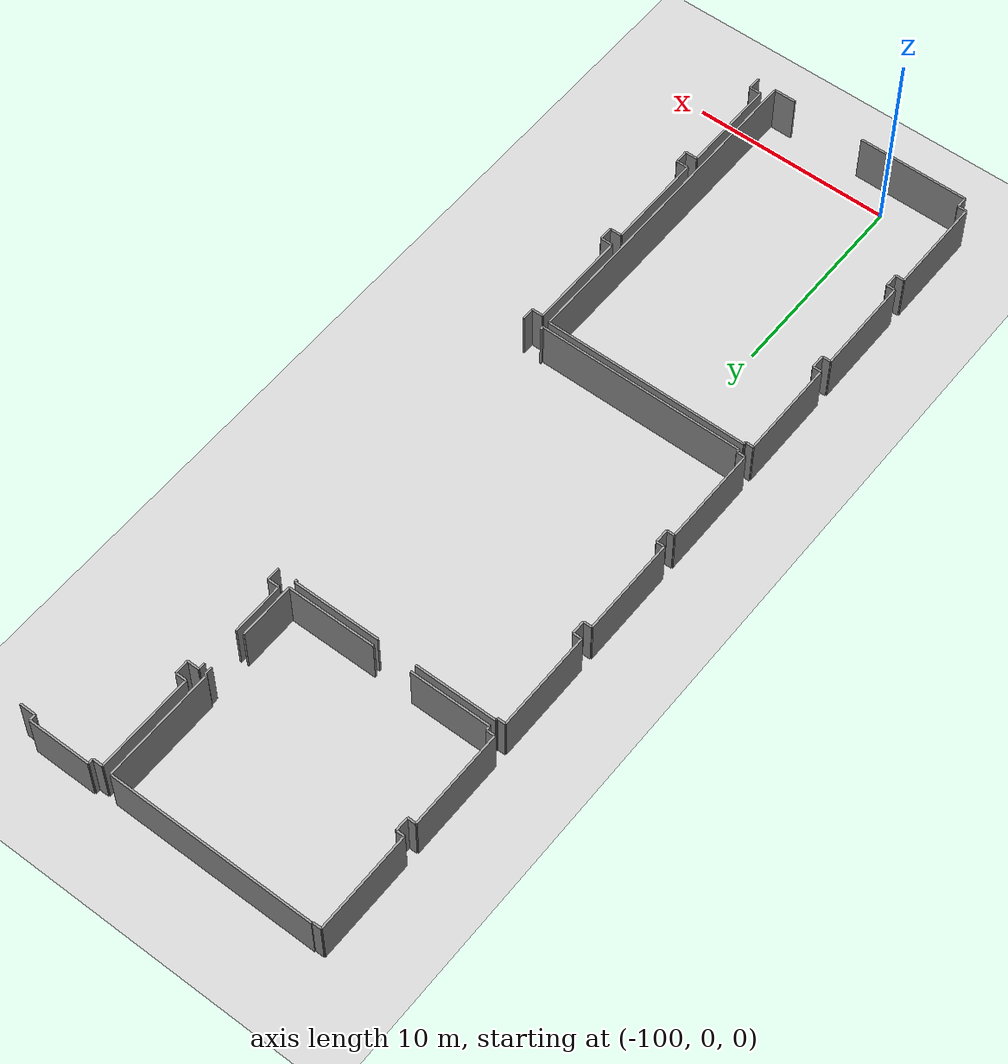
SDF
<sdf version="1.6">
 <world name="default">
  <model name="ground_plane">
   <static>1</static>
   <link name="link">
    <collision name="collision">
     <geometry><plane><normal>0 0 1</normal><size>100 100</size></plane></geometry>
     <surface><friction><ode><mu>100</mu><mu2>50</mu2></ode></friction></surface>
    </collision>
    <visual name="visual">
     <cast_shadows>0</cast_shadows>
     <geometry><plane><normal>0 0 1</normal><size>100 100</size></plane></geometry>
     <material>
      <script><uri>file://media/materials/scripts/gazebo.material</uri><name>Gazebo/Grey</name></script>
     </material>
    </visual>
   </link>
  </model>
  <model name="50015847">
   <static>1</static>
   <link name="Wall_123">
    <collision name="Wall_123_Collision">
     <geometry><box><size>4.93034016373 0.1 2.5</size></box></geometry>
     <pose>2.46517008186 0 1.25 0 0 0</pose>
    </collision>
    <visual name="Wall_123_Visual">
     <pose>2.46517008186 0 1.25 0 0 0</pose>
     <geometry><box><size>4.93034016373 0.1 2.5</size></box></geometry>
     <material>
      <script><uri>file://media/materials/scripts/gazebo.material</uri><name>Gazebo/Grey</name></script>
      <ambient>1 1 1 1</ambient>
     </material>
    </visual>
    <pose>28.5999389841 -44.6794122134 0 0 0 1.57079632679</pose>
   </link>
   <link name="Wall_124">
    <collision name="Wall_124_Collision">
     <geometry><box><size>0.425840239996 0.1 2.5</size></box></geometry>
     <pose>0.212920119998 0 1.25 0 0 0</pose>
    </collision>
    <visual name="Wall_124_Visual">
     <pose>0.212920119998 0 1.25 0 0 0</pose>
     <geometry><box><size>0.425840239996 0.1 2.5</size></box></geometry>
     <material>
      <script><uri>file://media/materials/scripts/gazebo.material</uri><name>Gazebo/Grey</name></script>
      <ambient>1 1 1 1</ambient>
     </material>
    </visual>
    <pose>28.5999389841 -39.7490720496 0 0 0 0.0</pose>
   </link>
   <link name="Wall_125">
    <collision name="Wall_125_Collision">
     <geometry><box><size>0.681598616973 0.1 2.5</size></box></geometry>
     <pose>0.340799308486 0 1.25 0 0 0</pose>
    </collision>
    <visual name="Wall_125_Visual">
     <pose>0.340799308486 0 1.25 0 0 0</pose>
     <geometry><box><size>0.681598616973 0.1 2.5</size></box></geometry>
     <material>
      <script><uri>file://media/materials/scripts/gazebo.material</uri><name>Gazebo/Grey</name></script>
      <ambient>1 1 1 1</ambient>
     </material>
    </visual>
    <pose>29.0257792241 -39.7490720496 0 0 0 1.57079632679</pose>
   </link>
   <link name="Wall_126">
    <collision name="Wall_126_Collision">
     <geometry><box><size>0.407281232521 0.1 2.5</size></box></geometry>
     <pose>0.203640616261 0 1.25 0 0 0</pose>
    </collision>
    <visual name="Wall_126_Visual">
     <pose>0.203640616261 0 1.25 0 0 0</pose>
     <geometry><box><size>0.407281232521 0.1 2.5</size></box></geometry>
     <material>
      <script><uri>file://media/materials/scripts/gazebo.material</uri><name>Gazebo/Grey</name></script>
      <ambient>1 1 1 1</ambient>
     </material>
    </visual>
    <pose>29.0257792241 -39.0674734327 0 0 0 3.14159265359</pose>
   </link>
   <link name="Wall_127">
    <collision name="Wall_127_Collision">
     <geometry><box><size>4.89500177963 0.1 2.5</size></box></geometry>
     <pose>2.44750088982 0 1.25 0 0 0</pose>
    </collision>
    <visual name="Wall_127_Visual">
     <pose>2.44750088982 0 1.25 0 0 0</pose>
     <geometry><box><size>4.89500177963 0.1 2.5</size></box></geometry>
     <material>
      <script><uri>file://media/materials/scripts/gazebo.material</uri><name>Gazebo/Grey</name></script>
      <ambient>1 1 1 1</ambient>
     </material>
    </visual>
    <pose>28.6184979916 -39.0674734327 0 0 0 1.57079632679</pose>
   </link>
   <link name="Wall_128">
    <collision name="Wall_128_Collision">
     <geometry><box><size>0.423806376163 0.1 2.5</size></box></geometry>
     <pose>0.211903188082 0 1.25 0 0 0</pose>
    </collision>
    <visual name="Wall_128_Visual">
     <pose>0.211903188082 0 1.25 0 0 0</pose>
     <geometry><box><size>0.423806376163 0.1 2.5</size></box></geometry>
     <material>
      <script><uri>file://media/materials/scripts/gazebo.material</uri><name>Gazebo/Grey</name></script>
      <ambient>1 1 1 1</ambient>
     </material>
    </visual>
    <pose>28.6184979916 -34.172471653 0 0 0 0.0</pose>
   </link>
   <link name="Wall_129">
    <collision name="Wall_129_Collision">
     <geometry><box><size>0.689734072304 0.1 2.5</size></box></geometry>
     <pose>0.344867036152 0 1.25 0 0 0</pose>
    </collision>
    <visual name="Wall_129_Visual">
     <pose>0.344867036152 0 1.25 0 0 0</pose>
     <geometry><box><size>0.689734072304 0.1 2.5</size></box></geometry>
     <material>
      <script><uri>file://media/materials/scripts/gazebo.material</uri><name>Gazebo/Grey</name></script>
      <ambient>1 1 1 1</ambient>
     </material>
    </visual>
    <pose>29.0423043677 -34.172471653 0 0 0 1.57079632679</pose>
   </link>
   <link name="Wall_130">
    <collision name="Wall_130_Collision">
     <geometry><box><size>0.407026999542 0.1 2.5</size></box></geometry>
     <pose>0.203513499771 0 1.25 0 0 0</pose>
    </collision>
    <visual name="Wall_130_Visual">
     <pose>0.203513499771 0 1.25 0 0 0</pose>
     <geometry><box><size>0.407026999542 0.1 2.5</size></box></geometry>
     <material>
      <script><uri>file://media/materials/scripts/gazebo.material</uri><name>Gazebo/Grey</name></script>
      <ambient>1 1 1 1</ambient>
     </material>
    </visual>
    <pose>29.0423043677 -33.4827375807 0 0 0 3.14159265359</pose>
   </link>
   <link name="Wall_131">
    <collision name="Wall_131_Collision">
     <geometry><box><size>4.97254283826 0.1 2.5</size></box></geometry>
     <pose>2.48627141913 0 1.25 0 0 0</pose>
    </collision>
    <visual name="Wall_131_Visual">
     <pose>2.48627141913 0 1.25 0 0 0</pose>
     <geometry><box><size>4.97254283826 0.1 2.5</size></box></geometry>
     <material>
      <script><uri>file://media/materials/scripts/gazebo.material</uri><name>Gazebo/Grey</name></script>
      <ambient>1 1 1 1</ambient>
     </material>
    </visual>
    <pose>28.6352773682 -33.4827375807 0 0 0 1.57079632679</pose>
   </link>
   <link name="Wall_132">
    <collision name="Wall_132_Collision">
     <geometry><box><size>0.402450805919 0.1 2.5</size></box></geometry>
     <pose>0.201225402959 0 1.25 0 0 0</pose>
    </collision>
    <visual name="Wall_132_Visual">
     <pose>0.201225402959 0 1.25 0 0 0</pose>
     <geometry><box><size>0.402450805919 0.1 2.5</size></box></geometry>
     <material>
      <script><uri>file://media/materials/scripts/gazebo.material</uri><name>Gazebo/Grey</name></script>
      <ambient>1 1 1 1</ambient>
     </material>
    </visual>
    <pose>28.6352773682 -28.5101947425 0 0 0 0.0</pose>
   </link>
   <link name="Wall_133">
    <collision name="Wall_133_Collision">
     <geometry><box><size>0.122794528906 0.1 2.5</size></box></geometry>
     <pose>0.0613972644531 0 1.25 0 0 0</pose>
    </collision>
    <visual name="Wall_133_Visual">
     <pose>0.0613972644531 0 1.25 0 0 0</pose>
     <geometry><box><size>0.122794528906 0.1 2.5</size></box></geometry>
     <material>
      <script><uri>file://media/materials/scripts/gazebo.material</uri><name>Gazebo/Grey</name></script>
      <ambient>1 1 1 1</ambient>
     </material>
    </visual>
    <pose>29.0377281741 -28.5101947425 0 0 0 1.57079632679</pose>
   </link>
   <link name="Wall_134">
    <collision name="Wall_134_Collision">
     <geometry><box><size>10.3427060558 0.1 2.5</size></box></geometry>
     <pose>5.17135302791 0 1.25 0 0 0</pose>
    </collision>
    <visual name="Wall_134_Visual">
     <pose>5.17135302791 0 1.25 0 0 0</pose>
     <geometry><box><size>10.3427060558 0.1 2.5</size></box></geometry>
     <material>
      <script><uri>file://media/materials/scripts/gazebo.material</uri><name>Gazebo/Grey</name></script>
      <ambient>1 1 1 1</ambient>
     </material>
    </visual>
    <pose>29.0377281741 -28.3874002136 0 0 0 0.0</pose>
   </link>
   <link name="Wall_135">
    <collision name="Wall_135_Collision">
     <geometry><box><size>16.8470025932 0.1 2.5</size></box></geometry>
     <pose>8.42350129659 0 1.25 0 0 0</pose>
    </collision>
    <visual name="Wall_135_Visual">
     <pose>8.42350129659 0 1.25 0 0 0</pose>
     <geometry><box><size>16.8470025932 0.1 2.5</size></box></geometry>
     <material>
      <script><uri>file://media/materials/scripts/gazebo.material</uri><name>Gazebo/Grey</name></script>
      <ambient>1 1 1 1</ambient>
     </material>
    </visual>
    <pose>39.3804342299 -28.3874002136 0 0 0 -1.57079632679</pose>
   </link>
   <link name="Wall_136">
    <collision name="Wall_136_Collision">
     <geometry><box><size>1.12955712615 0.1 2.5</size></box></geometry>
     <pose>0.564778563075 0 1.25 0 0 0</pose>
    </collision>
    <visual name="Wall_136_Visual">
     <pose>0.564778563075 0 1.25 0 0 0</pose>
     <geometry><box><size>1.12955712615 0.1 2.5</size></box></geometry>
     <material>
      <script><uri>file://media/materials/scripts/gazebo.material</uri><name>Gazebo/Grey</name></script>
      <ambient>1 1 1 1</ambient>
     </material>
    </visual>
    <pose>39.3804342299 -45.2344028067 0 0 0 3.14159265359</pose>
   </link>
   <link name="Wall_137">
    <collision name="Wall_137_Collision">
     <geometry><box><size>5.56948187319 0.1 2.5</size></box></geometry>
     <pose>2.78474093659 0 1.25 0 0 0</pose>
    </collision>
    <visual name="Wall_137_Visual">
     <pose>2.78474093659 0 1.25 0 0 0</pose>
     <geometry><box><size>5.56948187319 0.1 2.5</size></box></geometry>
     <material>
      <script><uri>file://media/materials/scripts/gazebo.material</uri><name>Gazebo/Grey</name></script>
      <ambient>1 1 1 1</ambient>
     </material>
    </visual>
    <pose>34.5952610973 -45.2344028067 0 0 0 3.14159265359</pose>
   </link>
   <link name="Wall_138">
    <collision name="Wall_138_Collision">
     <geometry><box><size>0.557024457213 0.1 2.5</size></box></geometry>
     <pose>0.278512228606 0 1.25 0 0 0</pose>
    </collision>
    <visual name="Wall_138_Visual">
     <pose>0.278512228606 0 1.25 0 0 0</pose>
     <geometry><box><size>0.557024457213 0.1 2.5</size></box></geometry>
     <material>
      <script><uri>file://media/materials/scripts/gazebo.material</uri><name>Gazebo/Grey</name></script>
      <ambient>1 1 1 1</ambient>
     </material>
    </visual>
    <pose>29.0257792241 -45.2344028067 0 0 0 1.57079632679</pose>
   </link>
   <link name="Wall_139">
    <collision name="Wall_139_Collision">
     <geometry><box><size>0.425845096956 0.1 2.5</size></box></geometry>
     <pose>0.212922548478 0 1.25 0 0 0</pose>
    </collision>
    <visual name="Wall_139_Visual">
     <pose>0.212922548478 0 1.25 0 0 0</pose>
     <geometry><box><size>0.425845096956 0.1 2.5</size></box></geometry>
     <material>
      <script><uri>file://media/materials/scripts/gazebo.material</uri><name>Gazebo/Grey</name></script>
      <ambient>1 1 1 1</ambient>
     </material>
    </visual>
    <pose>29.0257792241 -44.6773783495 0 0 0 -3.1368165705</pose>
   </link>
   <link name="Wall_160">
    <collision name="Wall_160_Collision">
     <geometry><box><size>0.657446483958 0.1 2.5</size></box></geometry>
     <pose>0.328723241979 0 1.25 0 0 0</pose>
    </collision>
    <visual name="Wall_160_Visual">
     <pose>0.328723241979 0 1.25 0 0 0</pose>
     <geometry><box><size>0.657446483958 0.1 2.5</size></box></geometry>
     <material>
      <script><uri>file://media/materials/scripts/gazebo.material</uri><name>Gazebo/Grey</name></script>
      <ambient>1 1 1 1</ambient>
     </material>
    </visual>
    <pose>40.364824325 -45.3218589515 0 0 0 1.57079632679</pose>
   </link>
   <link name="Wall_161">
    <collision name="Wall_161_Collision">
     <geometry><box><size>0.581430823206 0.1 2.5</size></box></geometry>
     <pose>0.290715411603 0 1.25 0 0 0</pose>
    </collision>
    <visual name="Wall_161_Visual">
     <pose>0.290715411603 0 1.25 0 0 0</pose>
     <geometry><box><size>0.581430823206 0.1 2.5</size></box></geometry>
     <material>
      <script><uri>file://media/materials/scripts/gazebo.material</uri><name>Gazebo/Grey</name></script>
      <ambient>1 1 1 1</ambient>
     </material>
    </visual>
    <pose>40.364824325 -44.6644124676 0 0 0 3.14159265359</pose>
   </link>
   <link name="Wall_162">
    <collision name="Wall_162_Collision">
     <geometry><box><size>4.914831952 0.1 2.5</size></box></geometry>
     <pose>2.457415976 0 1.25 0 0 0</pose>
    </collision>
    <visual name="Wall_162_Visual">
     <pose>2.457415976 0 1.25 0 0 0</pose>
     <geometry><box><size>4.914831952 0.1 2.5</size></box></geometry>
     <material>
      <script><uri>file://media/materials/scripts/gazebo.material</uri><name>Gazebo/Grey</name></script>
      <ambient>1 1 1 1</ambient>
     </material>
    </visual>
    <pose>39.7833935018 -44.6644124676 0 0 0 1.57079632679</pose>
   </link>
   <link name="Wall_163">
    <collision name="Wall_163_Collision">
     <geometry><box><size>0.607362587075 0.1 2.5</size></box></geometry>
     <pose>0.303681293537 0 1.25 0 0 0</pose>
    </collision>
    <visual name="Wall_163_Visual">
     <pose>0.303681293537 0 1.25 0 0 0</pose>
     <geometry><box><size>0.607362587075 0.1 2.5</size></box></geometry>
     <material>
      <script><uri>file://media/materials/scripts/gazebo.material</uri><name>Gazebo/Grey</name></script>
      <ambient>1 1 1 1</ambient>
     </material>
    </visual>
    <pose>39.7833935018 -39.7495805156 0 0 0 0.0</pose>
   </link>
   <link name="Wall_164">
    <collision name="Wall_164_Collision">
     <geometry><box><size>0.668886968017 0.1 2.5</size></box></geometry>
     <pose>0.334443484009 0 1.25 0 0 0</pose>
    </collision>
    <visual name="Wall_164_Visual">
     <pose>0.334443484009 0 1.25 0 0 0</pose>
     <geometry><box><size>0.668886968017 0.1 2.5</size></box></geometry>
     <material>
      <script><uri>file://media/materials/scripts/gazebo.material</uri><name>Gazebo/Grey</name></script>
      <ambient>1 1 1 1</ambient>
     </material>
    </visual>
    <pose>40.3907560889 -39.7495805156 0 0 0 1.57079632679</pose>
   </link>
   <link name="Wall_165">
    <collision name="Wall_165_Collision">
     <geometry><box><size>0.581430823206 0.1 2.5</size></box></geometry>
     <pose>0.290715411603 0 1.25 0 0 0</pose>
    </collision>
    <visual name="Wall_165_Visual">
     <pose>0.290715411603 0 1.25 0 0 0</pose>
     <geometry><box><size>0.581430823206 0.1 2.5</size></box></geometry>
     <material>
      <script><uri>file://media/materials/scripts/gazebo.material</uri><name>Gazebo/Grey</name></script>
      <ambient>1 1 1 1</ambient>
     </material>
    </visual>
    <pose>40.3907560889 -39.0806935476 0 0 0 3.14159265359</pose>
   </link>
   <link name="Wall_166">
    <collision name="Wall_166_Collision">
     <geometry><box><size>4.94203488076 0.1 2.5</size></box></geometry>
     <pose>2.47101744038 0 1.25 0 0 0</pose>
    </collision>
    <visual name="Wall_166_Visual">
     <pose>2.47101744038 0 1.25 0 0 0</pose>
     <geometry><box><size>4.94203488076 0.1 2.5</size></box></geometry>
     <material>
      <script><uri>file://media/materials/scripts/gazebo.material</uri><name>Gazebo/Grey</name></script>
      <ambient>1 1 1 1</ambient>
     </material>
    </visual>
    <pose>39.8093252657 -39.0806935476 0 0 0 1.57079632679</pose>
   </link>
   <link name="Wall_167">
    <collision name="Wall_167_Collision">
     <geometry><box><size>0.595922103015 0.1 2.5</size></box></geometry>
     <pose>0.297961051508 0 1.25 0 0 0</pose>
    </collision>
    <visual name="Wall_167_Visual">
     <pose>0.297961051508 0 1.25 0 0 0</pose>
     <geometry><box><size>0.595922103015 0.1 2.5</size></box></geometry>
     <material>
      <script><uri>file://media/materials/scripts/gazebo.material</uri><name>Gazebo/Grey</name></script>
      <ambient>1 1 1 1</ambient>
     </material>
    </visual>
    <pose>39.8093252657 -34.1386586668 0 0 0 0.0</pose>
   </link>
   <link name="Wall_168">
    <collision name="Wall_168_Collision">
     <geometry><box><size>0.668632735038 0.1 2.5</size></box></geometry>
     <pose>0.334316367519 0 1.25 0 0 0</pose>
    </collision>
    <visual name="Wall_168_Visual">
     <pose>0.334316367519 0 1.25 0 0 0</pose>
     <geometry><box><size>0.668632735038 0.1 2.5</size></box></geometry>
     <material>
      <script><uri>file://media/materials/scripts/gazebo.material</uri><name>Gazebo/Grey</name></script>
      <ambient>1 1 1 1</ambient>
     </material>
    </visual>
    <pose>40.4052473687 -34.1386586668 0 0 0 1.57079632679</pose>
   </link>
   <link name="Wall_169">
    <collision name="Wall_169_Collision">
     <geometry><box><size>0.595922103015 0.1 2.5</size></box></geometry>
     <pose>0.297961051508 0 1.25 0 0 0</pose>
    </collision>
    <visual name="Wall_169_Visual">
     <pose>0.297961051508 0 1.25 0 0 0</pose>
     <geometry><box><size>0.595922103015 0.1 2.5</size></box></geometry>
     <material>
      <script><uri>file://media/materials/scripts/gazebo.material</uri><name>Gazebo/Grey</name></script>
      <ambient>1 1 1 1</ambient>
     </material>
    </visual>
    <pose>40.4052473687 -33.4700259318 0 0 0 3.14159265359</pose>
   </link>
   <link name="Wall_170">
    <collision name="Wall_170_Collision">
     <geometry><box><size>4.97101744038 0.1 2.5</size></box></geometry>
     <pose>2.48550872019 0 1.25 0 0 0</pose>
    </collision>
    <visual name="Wall_170_Visual">
     <pose>2.48550872019 0 1.25 0 0 0</pose>
     <geometry><box><size>4.97101744038 0.1 2.5</size></box></geometry>
     <material>
      <script><uri>file://media/materials/scripts/gazebo.material</uri><name>Gazebo/Grey</name></script>
      <ambient>1 1 1 1</ambient>
     </material>
    </visual>
    <pose>39.8093252657 -33.4700259318 0 0 0 1.57079632679</pose>
   </link>
   <link name="Wall_171">
    <collision name="Wall_171_Collision">
     <geometry><box><size>0.569227640209 0.1 2.5</size></box></geometry>
     <pose>0.284613820105 0 1.25 0 0 0</pose>
    </collision>
    <visual name="Wall_171_Visual">
     <pose>0.284613820105 0 1.25 0 0 0</pose>
     <geometry><box><size>0.569227640209 0.1 2.5</size></box></geometry>
     <material>
      <script><uri>file://media/materials/scripts/gazebo.material</uri><name>Gazebo/Grey</name></script>
      <ambient>1 1 1 1</ambient>
     </material>
    </visual>
    <pose>39.8093252657 -28.4990084914 0 0 0 0.0</pose>
   </link>
   <link name="Wall_172">
    <collision name="Wall_172_Collision">
     <geometry><box><size>0.616006508364 0.1 2.5</size></box></geometry>
     <pose>0.308003254182 0 1.25 0 0 0</pose>
    </collision>
    <visual name="Wall_172_Visual">
     <pose>0.308003254182 0 1.25 0 0 0</pose>
     <geometry><box><size>0.616006508364 0.1 2.5</size></box></geometry>
     <material>
      <script><uri>file://media/materials/scripts/gazebo.material</uri><name>Gazebo/Grey</name></script>
      <ambient>1 1 1 1</ambient>
     </material>
    </visual>
    <pose>40.3785529059 -28.4990084914 0 0 0 1.57079632679</pose>
   </link>
   <link name="Wall_173">
    <collision name="Wall_173_Collision">
     <geometry><box><size>0.659480347791 0.1 2.5</size></box></geometry>
     <pose>0.329740173895 0 1.25 0 0 0</pose>
    </collision>
    <visual name="Wall_173_Visual">
     <pose>0.329740173895 0 1.25 0 0 0</pose>
     <geometry><box><size>0.659480347791 0.1 2.5</size></box></geometry>
     <material>
      <script><uri>file://media/materials/scripts/gazebo.material</uri><name>Gazebo/Grey</name></script>
      <ambient>1 1 1 1</ambient>
     </material>
    </visual>
    <pose>40.3785529059 -11.6728530025 0 0 0 1.57079632679</pose>
   </link>
   <link name="Wall_174">
    <collision name="Wall_174_Collision">
     <geometry><box><size>0.589566278538 0.1 2.5</size></box></geometry>
     <pose>0.294783139269 0 1.25 0 0 0</pose>
    </collision>
    <visual name="Wall_174_Visual">
     <pose>0.294783139269 0 1.25 0 0 0</pose>
     <geometry><box><size>0.589566278538 0.1 2.5</size></box></geometry>
     <material>
      <script><uri>file://media/materials/scripts/gazebo.material</uri><name>Gazebo/Grey</name></script>
      <ambient>1 1 1 1</ambient>
     </material>
    </visual>
    <pose>40.3785529059 -11.0133726547 0 0 0 3.14159265359</pose>
   </link>
   <link name="Wall_175">
    <collision name="Wall_175_Collision">
     <geometry><box><size>2.6447856816 0.1 2.5</size></box></geometry>
     <pose>1.3223928408 0 1.25 0 0 0</pose>
    </collision>
    <visual name="Wall_175_Visual">
     <pose>1.3223928408 0 1.25 0 0 0</pose>
     <geometry><box><size>2.6447856816 0.1 2.5</size></box></geometry>
     <material>
      <script><uri>file://media/materials/scripts/gazebo.material</uri><name>Gazebo/Grey</name></script>
      <ambient>1 1 1 1</ambient>
     </material>
    </visual>
    <pose>39.7889866273 -11.0133726547 0 0 0 1.57079632679</pose>
   </link>
   <link name="Wall_176">
    <collision name="Wall_176_Collision">
     <geometry><box><size>0.340672191997 0.1 2.5</size></box></geometry>
     <pose>0.170336095998 0 1.25 0 0 0</pose>
    </collision>
    <visual name="Wall_176_Visual">
     <pose>0.170336095998 0 1.25 0 0 0</pose>
     <geometry><box><size>0.340672191997 0.1 2.5</size></box></geometry>
     <material>
      <script><uri>file://media/materials/scripts/gazebo.material</uri><name>Gazebo/Grey</name></script>
      <ambient>1 1 1 1</ambient>
     </material>
    </visual>
    <pose>39.7889866273 -6.45548380536 0 0 0 1.57079632679</pose>
   </link>
   <link name="Wall_177">
    <collision name="Wall_177_Collision">
     <geometry><box><size>0.597701733869 0.1 2.5</size></box></geometry>
     <pose>0.298850866934 0 1.25 0 0 0</pose>
    </collision>
    <visual name="Wall_177_Visual">
     <pose>0.298850866934 0 1.25 0 0 0</pose>
     <geometry><box><size>0.597701733869 0.1 2.5</size></box></geometry>
     <material>
      <script><uri>file://media/materials/scripts/gazebo.material</uri><name>Gazebo/Grey</name></script>
      <ambient>1 1 1 1</ambient>
     </material>
    </visual>
    <pose>39.7889866273 -6.11481161336 0 0 0 0.0</pose>
   </link>
   <link name="Wall_178">
    <collision name="Wall_178_Collision">
     <geometry><box><size>0.698123760614 0.1 2.5</size></box></geometry>
     <pose>0.349061880307 0 1.25 0 0 0</pose>
    </collision>
    <visual name="Wall_178_Visual">
     <pose>0.349061880307 0 1.25 0 0 0</pose>
     <geometry><box><size>0.698123760614 0.1 2.5</size></box></geometry>
     <material>
      <script><uri>file://media/materials/scripts/gazebo.material</uri><name>Gazebo/Grey</name></script>
      <ambient>1 1 1 1</ambient>
     </material>
    </visual>
    <pose>40.3866883612 -6.11481161336 0 0 0 1.57079632679</pose>
   </link>
   <link name="Wall_179">
    <collision name="Wall_179_Collision">
     <geometry><box><size>0.539990847613 0.1 2.5</size></box></geometry>
     <pose>0.269995423806 0 1.25 0 0 0</pose>
    </collision>
    <visual name="Wall_179_Visual">
     <pose>0.269995423806 0 1.25 0 0 0</pose>
     <geometry><box><size>0.539990847613 0.1 2.5</size></box></geometry>
     <material>
      <script><uri>file://media/materials/scripts/gazebo.material</uri><name>Gazebo/Grey</name></script>
      <ambient>1 1 1 1</ambient>
     </material>
    </visual>
    <pose>40.3866883612 -5.41668785275 0 0 0 3.14159265359</pose>
   </link>
   <link name="Wall_180">
    <collision name="Wall_180_Collision">
     <geometry><box><size>4.90339146794 0.1 2.5</size></box></geometry>
     <pose>2.45169573397 0 1.25 0 0 0</pose>
    </collision>
    <visual name="Wall_180_Visual">
     <pose>2.45169573397 0 1.25 0 0 0</pose>
     <geometry><box><size>4.90339146794 0.1 2.5</size></box></geometry>
     <material>
      <script><uri>file://media/materials/scripts/gazebo.material</uri><name>Gazebo/Grey</name></script>
      <ambient>1 1 1 1</ambient>
     </material>
    </visual>
    <pose>39.8466975136 -5.41668785275 0 0 0 1.57079632679</pose>
   </link>
   <link name="Wall_181">
    <collision name="Wall_181_Collision">
     <geometry><box><size>0.515076015661 0.1 2.5</size></box></geometry>
     <pose>0.25753800783 0 1.25 0 0 0</pose>
    </collision>
    <visual name="Wall_181_Visual">
     <pose>0.25753800783 0 1.25 0 0 0</pose>
     <geometry><box><size>0.515076015661 0.1 2.5</size></box></geometry>
     <material>
      <script><uri>file://media/materials/scripts/gazebo.material</uri><name>Gazebo/Grey</name></script>
      <ambient>1 1 1 1</ambient>
     </material>
    </visual>
    <pose>39.8466975136 -0.513296384807 0 0 0 0.0</pose>
   </link>
   <link name="Wall_182">
    <collision name="Wall_182_Collision">
     <geometry><box><size>0.257792240809 0.1 2.5</size></box></geometry>
     <pose>0.128896120405 0 1.25 0 0 0</pose>
    </collision>
    <visual name="Wall_182_Visual">
     <pose>0.128896120405 0 1.25 0 0 0</pose>
     <geometry><box><size>0.257792240809 0.1 2.5</size></box></geometry>
     <material>
      <script><uri>file://media/materials/scripts/gazebo.material</uri><name>Gazebo/Grey</name></script>
      <ambient>1 1 1 1</ambient>
     </material>
    </visual>
    <pose>40.3617735293 -0.513296384807 0 0 0 1.57079632679</pose>
   </link>
   <link name="Wall_183">
    <collision name="Wall_183_Collision">
     <geometry><box><size>3.13342146743 0.1 2.5</size></box></geometry>
     <pose>1.56671073372 0 1.25 0 0 0</pose>
    </collision>
    <visual name="Wall_183_Visual">
     <pose>1.56671073372 0 1.25 0 0 0</pose>
     <geometry><box><size>3.13342146743 0.1 2.5</size></box></geometry>
     <material>
      <script><uri>file://media/materials/scripts/gazebo.material</uri><name>Gazebo/Grey</name></script>
      <ambient>1 1 1 1</ambient>
     </material>
    </visual>
    <pose>40.3617735293 -0.255504143998 0 0 0 0.0</pose>
   </link>
   <link name="Wall_184">
    <collision name="Wall_184_Collision">
     <geometry><box><size>0.307621904713 0.1 2.5</size></box></geometry>
     <pose>0.153810952357 0 1.25 0 0 0</pose>
    </collision>
    <visual name="Wall_184_Visual">
     <pose>0.153810952357 0 1.25 0 0 0</pose>
     <geometry><box><size>0.307621904713 0.1 2.5</size></box></geometry>
     <material>
      <script><uri>file://media/materials/scripts/gazebo.material</uri><name>Gazebo/Grey</name></script>
      <ambient>1 1 1 1</ambient>
     </material>
    </visual>
    <pose>43.4951949967 -0.255504143998 0 0 0 -1.57079632679</pose>
   </link>
   <link name="Wall_185">
    <collision name="Wall_185_Collision">
     <geometry><box><size>0.797783088422 0.1 2.5</size></box></geometry>
     <pose>0.398891544211 0 1.25 0 0 0</pose>
    </collision>
    <visual name="Wall_185_Visual">
     <pose>0.398891544211 0 1.25 0 0 0</pose>
     <geometry><box><size>0.797783088422 0.1 2.5</size></box></geometry>
     <material>
      <script><uri>file://media/materials/scripts/gazebo.material</uri><name>Gazebo/Grey</name></script>
      <ambient>1 1 1 1</ambient>
     </material>
    </visual>
    <pose>43.4951949967 -0.563126048711 0 0 0 0.0</pose>
   </link>
   <link name="Wall_244">
    <collision name="Wall_244_Collision">
     <geometry><box><size>4.96745817867 0.1 2.5</size></box></geometry>
     <pose>2.48372908934 0 1.25 0 0 0</pose>
    </collision>
    <visual name="Wall_244_Visual">
     <pose>2.48372908934 0 1.25 0 0 0</pose>
     <geometry><box><size>4.96745817867 0.1 2.5</size></box></geometry>
     <material>
      <script><uri>file://media/materials/scripts/gazebo.material</uri><name>Gazebo/Grey</name></script>
      <ambient>1 1 1 1</ambient>
     </material>
    </visual>
    <pose>28.6223114862 -27.8913916713 0 0 0 1.57079632679</pose>
   </link>
   <link name="Wall_245">
    <collision name="Wall_245_Collision">
     <geometry><box><size>0.392027253775 0.1 2.5</size></box></geometry>
     <pose>0.196013626888 0 1.25 0 0 0</pose>
    </collision>
    <visual name="Wall_245_Visual">
     <pose>0.196013626888 0 1.25 0 0 0</pose>
     <geometry><box><size>0.392027253775 0.1 2.5</size></box></geometry>
     <material>
      <script><uri>file://media/materials/scripts/gazebo.material</uri><name>Gazebo/Grey</name></script>
      <ambient>1 1 1 1</ambient>
     </material>
    </visual>
    <pose>28.6223114862 -22.9239334927 0 0 0 0.0</pose>
   </link>
   <link name="Wall_246">
    <collision name="Wall_246_Collision">
     <geometry><box><size>0.695327197844 0.1 2.5</size></box></geometry>
     <pose>0.347663598922 0 1.25 0 0 0</pose>
    </collision>
    <visual name="Wall_246_Visual">
     <pose>0.347663598922 0 1.25 0 0 0</pose>
     <geometry><box><size>0.695327197844 0.1 2.5</size></box></geometry>
     <material>
      <script><uri>file://media/materials/scripts/gazebo.material</uri><name>Gazebo/Grey</name></script>
      <ambient>1 1 1 1</ambient>
     </material>
    </visual>
    <pose>29.01433874 -22.9239334927 0 0 0 1.57079632679</pose>
   </link>
   <link name="Wall_247">
    <collision name="Wall_247_Collision">
     <geometry><box><size>0.392027253775 0.1 2.5</size></box></geometry>
     <pose>0.196013626888 0 1.25 0 0 0</pose>
    </collision>
    <visual name="Wall_247_Visual">
     <pose>0.196013626888 0 1.25 0 0 0</pose>
     <geometry><box><size>0.392027253775 0.1 2.5</size></box></geometry>
     <material>
      <script><uri>file://media/materials/scripts/gazebo.material</uri><name>Gazebo/Grey</name></script>
      <ambient>1 1 1 1</ambient>
     </material>
    </visual>
    <pose>29.01433874 -22.2286062948 0 0 0 3.14159265359</pose>
   </link>
   <link name="Wall_248">
    <collision name="Wall_248_Collision">
     <geometry><box><size>4.89347638176 0.1 2.5</size></box></geometry>
     <pose>2.44673819088 0 1.25 0 0 0</pose>
    </collision>
    <visual name="Wall_248_Visual">
     <pose>2.44673819088 0 1.25 0 0 0</pose>
     <geometry><box><size>4.89347638176 0.1 2.5</size></box></geometry>
     <material>
      <script><uri>file://media/materials/scripts/gazebo.material</uri><name>Gazebo/Grey</name></script>
      <ambient>1 1 1 1</ambient>
     </material>
    </visual>
    <pose>28.6223114862 -22.2286062948 0 0 0 1.57079632679</pose>
   </link>
   <link name="Wall_249">
    <collision name="Wall_249_Collision">
     <geometry><box><size>0.43041643362 0.1 2.5</size></box></geometry>
     <pose>0.21520821681 0 1.25 0 0 0</pose>
    </collision>
    <visual name="Wall_249_Visual">
     <pose>0.21520821681 0 1.25 0 0 0</pose>
     <geometry><box><size>0.43041643362 0.1 2.5</size></box></geometry>
     <material>
      <script><uri>file://media/materials/scripts/gazebo.material</uri><name>Gazebo/Grey</name></script>
      <ambient>1 1 1 1</ambient>
     </material>
    </visual>
    <pose>28.6223114862 -17.3351299131 0 0 0 0.0</pose>
   </link>
   <link name="Wall_250">
    <collision name="Wall_250_Collision">
     <geometry><box><size>0.683124014847 0.1 2.5</size></box></geometry>
     <pose>0.341562007424 0 1.25 0 0 0</pose>
    </collision>
    <visual name="Wall_250_Visual">
     <pose>0.341562007424 0 1.25 0 0 0</pose>
     <geometry><box><size>0.683124014847 0.1 2.5</size></box></geometry>
     <material>
      <script><uri>file://media/materials/scripts/gazebo.material</uri><name>Gazebo/Grey</name></script>
      <ambient>1 1 1 1</ambient>
     </material>
    </visual>
    <pose>29.0527279199 -17.3351299131 0 0 0 1.57079632679</pose>
   </link>
   <link name="Wall_251">
    <collision name="Wall_251_Collision">
     <geometry><box><size>0.43600955916 0.1 2.5</size></box></geometry>
     <pose>0.21800477958 0 1.25 0 0 0</pose>
    </collision>
    <visual name="Wall_251_Visual">
     <pose>0.21800477958 0 1.25 0 0 0</pose>
     <geometry><box><size>0.43600955916 0.1 2.5</size></box></geometry>
     <material>
      <script><uri>file://media/materials/scripts/gazebo.material</uri><name>Gazebo/Grey</name></script>
      <ambient>1 1 1 1</ambient>
     </material>
    </visual>
    <pose>29.0527279199 -16.6520058982 0 0 0 3.14159265359</pose>
   </link>
   <link name="Wall_252">
    <collision name="Wall_252_Collision">
     <geometry><box><size>4.95144150099 0.1 2.5</size></box></geometry>
     <pose>2.4757207505 0 1.25 0 0 0</pose>
    </collision>
    <visual name="Wall_252_Visual">
     <pose>2.4757207505 0 1.25 0 0 0</pose>
     <geometry><box><size>4.95144150099 0.1 2.5</size></box></geometry>
     <material>
      <script><uri>file://media/materials/scripts/gazebo.material</uri><name>Gazebo/Grey</name></script>
      <ambient>1 1 1 1</ambient>
     </material>
    </visual>
    <pose>28.6167183607 -16.6520058982 0 0 0 1.57079632679</pose>
   </link>
   <link name="Wall_253">
    <collision name="Wall_253_Collision">
     <geometry><box><size>0.406518533584 0.1 2.5</size></box></geometry>
     <pose>0.203259266792 0 1.25 0 0 0</pose>
    </collision>
    <visual name="Wall_253_Visual">
     <pose>0.203259266792 0 1.25 0 0 0</pose>
     <geometry><box><size>0.406518533584 0.1 2.5</size></box></geometry>
     <material>
      <script><uri>file://media/materials/scripts/gazebo.material</uri><name>Gazebo/Grey</name></script>
      <ambient>1 1 1 1</ambient>
     </material>
    </visual>
    <pose>28.6167183607 -11.7005643972 0 0 0 0.0</pose>
   </link>
   <link name="Wall_254">
    <collision name="Wall_254_Collision">
     <geometry><box><size>0.108557482077 0.1 2.5</size></box></geometry>
     <pose>0.0542787410383 0 1.25 0 0 0</pose>
    </collision>
    <visual name="Wall_254_Visual">
     <pose>0.0542787410383 0 1.25 0 0 0</pose>
     <geometry><box><size>0.108557482077 0.1 2.5</size></box></geometry>
     <material>
      <script><uri>file://media/materials/scripts/gazebo.material</uri><name>Gazebo/Grey</name></script>
      <ambient>1 1 1 1</ambient>
     </material>
    </visual>
    <pose>29.0232368943 -11.7005643972 0 0 0 1.57079632679</pose>
   </link>
   <link name="Wall_255">
    <collision name="Wall_255_Collision">
     <geometry><box><size>4.07586312096 0.1 2.5</size></box></geometry>
     <pose>2.03793156048 0 1.25 0 0 0</pose>
    </collision>
    <visual name="Wall_255_Visual">
     <pose>2.03793156048 0 1.25 0 0 0</pose>
     <geometry><box><size>4.07586312096 0.1 2.5</size></box></geometry>
     <material>
      <script><uri>file://media/materials/scripts/gazebo.material</uri><name>Gazebo/Grey</name></script>
      <ambient>1 1 1 1</ambient>
     </material>
    </visual>
    <pose>29.0232368943 -11.5920069151 0 0 0 0.0</pose>
   </link>
   <link name="Wall_256">
    <collision name="Wall_256_Collision">
     <geometry><box><size>4.38501042355 0.1 2.5</size></box></geometry>
     <pose>2.19250521178 0 1.25 0 0 0</pose>
    </collision>
    <visual name="Wall_256_Visual">
     <pose>2.19250521178 0 1.25 0 0 0</pose>
     <geometry><box><size>4.38501042355 0.1 2.5</size></box></geometry>
     <material>
      <script><uri>file://media/materials/scripts/gazebo.material</uri><name>Gazebo/Grey</name></script>
      <ambient>1 1 1 1</ambient>
     </material>
    </visual>
    <pose>35.0411857426 -11.5920069151 0 0 0 0.0</pose>
   </link>
   <link name="Wall_257">
    <collision name="Wall_257_Collision">
     <geometry><box><size>0.124828392739 0.1 2.5</size></box></geometry>
     <pose>0.0624141963696 0 1.25 0 0 0</pose>
    </collision>
    <visual name="Wall_257_Visual">
     <pose>0.0624141963696 0 1.25 0 0 0</pose>
     <geometry><box><size>0.124828392739 0.1 2.5</size></box></geometry>
     <material>
      <script><uri>file://media/materials/scripts/gazebo.material</uri><name>Gazebo/Grey</name></script>
      <ambient>1 1 1 1</ambient>
     </material>
    </visual>
    <pose>39.4261961662 -11.5920069151 0 0 0 -1.57079632679</pose>
   </link>
   <link name="Wall_258">
    <collision name="Wall_258_Collision">
     <geometry><box><size>0.164742970458 0.1 2.5</size></box></geometry>
     <pose>0.0823714852291 0 1.25 0 0 0</pose>
    </collision>
    <visual name="Wall_258_Visual">
     <pose>0.0823714852291 0 1.25 0 0 0</pose>
     <geometry><box><size>0.164742970458 0.1 2.5</size></box></geometry>
     <material>
      <script><uri>file://media/materials/scripts/gazebo.material</uri><name>Gazebo/Grey</name></script>
      <ambient>1 1 1 1</ambient>
     </material>
    </visual>
    <pose>39.4261961662 -27.8738495958 0 0 0 -1.57079632679</pose>
   </link>
   <link name="Wall_259">
    <collision name="Wall_259_Collision">
     <geometry><box><size>10.3910103219 0.1 2.5</size></box></geometry>
     <pose>5.19550516093 0 1.25 0 0 0</pose>
    </collision>
    <visual name="Wall_259_Visual">
     <pose>5.19550516093 0 1.25 0 0 0</pose>
     <geometry><box><size>10.3910103219 0.1 2.5</size></box></geometry>
     <material>
      <script><uri>file://media/materials/scripts/gazebo.material</uri><name>Gazebo/Grey</name></script>
      <ambient>1 1 1 1</ambient>
     </material>
    </visual>
    <pose>39.4261961662 -28.0385925662 0 0 0 3.14159265359</pose>
   </link>
   <link name="Wall_260">
    <collision name="Wall_260_Collision">
     <geometry><box><size>0.134743478924 0.1 2.5</size></box></geometry>
     <pose>0.067371739462 0 1.25 0 0 0</pose>
    </collision>
    <visual name="Wall_260_Visual">
     <pose>0.067371739462 0 1.25 0 0 0</pose>
     <geometry><box><size>0.134743478924 0.1 2.5</size></box></geometry>
     <material>
      <script><uri>file://media/materials/scripts/gazebo.material</uri><name>Gazebo/Grey</name></script>
      <ambient>1 1 1 1</ambient>
     </material>
    </visual>
    <pose>29.0351858443 -28.0385925662 0 0 0 1.57079632679</pose>
   </link>
   <link name="Wall_261">
    <collision name="Wall_261_Collision">
     <geometry><box><size>0.413062250463 0.1 2.5</size></box></geometry>
     <pose>0.206531125232 0 1.25 0 0 0</pose>
    </collision>
    <visual name="Wall_261_Visual">
     <pose>0.206531125232 0 1.25 0 0 0</pose>
     <geometry><box><size>0.413062250463 0.1 2.5</size></box></geometry>
     <material>
      <script><uri>file://media/materials/scripts/gazebo.material</uri><name>Gazebo/Grey</name></script>
      <ambient>1 1 1 1</ambient>
     </material>
    </visual>
    <pose>29.0351858443 -27.9038490873 0 0 0 3.11142939086</pose>
   </link>
   <link name="Wall_262">
    <collision name="Wall_262_Collision">
     <geometry><box><size>4.89957797325 0.1 2.5</size></box></geometry>
     <pose>2.44978898663 0 1.25 0 0 0</pose>
    </collision>
    <visual name="Wall_262_Visual">
     <pose>2.44978898663 0 1.25 0 0 0</pose>
     <geometry><box><size>4.89957797325 0.1 2.5</size></box></geometry>
     <material>
      <script><uri>file://media/materials/scripts/gazebo.material</uri><name>Gazebo/Grey</name></script>
      <ambient>1 1 1 1</ambient>
     </material>
    </visual>
    <pose>28.6113794681 -11.0209996441 0 0 0 1.57079632679</pose>
   </link>
   <link name="Wall_263">
    <collision name="Wall_263_Collision">
     <geometry><box><size>0.41897594956 0.1 2.5</size></box></geometry>
     <pose>0.20948797478 0 1.25 0 0 0</pose>
    </collision>
    <visual name="Wall_263_Visual">
     <pose>0.20948797478 0 1.25 0 0 0</pose>
     <geometry><box><size>0.41897594956 0.1 2.5</size></box></geometry>
     <material>
      <script><uri>file://media/materials/scripts/gazebo.material</uri><name>Gazebo/Grey</name></script>
      <ambient>1 1 1 1</ambient>
     </material>
    </visual>
    <pose>28.6113794681 -6.12142167082 0 0 0 0.0</pose>
   </link>
   <link name="Wall_264">
    <collision name="Wall_264_Collision">
     <geometry><box><size>0.693801799969 0.1 2.5</size></box></geometry>
     <pose>0.346900899985 0 1.25 0 0 0</pose>
    </collision>
    <visual name="Wall_264_Visual">
     <pose>0.346900899985 0 1.25 0 0 0</pose>
     <geometry><box><size>0.693801799969 0.1 2.5</size></box></geometry>
     <material>
      <script><uri>file://media/materials/scripts/gazebo.material</uri><name>Gazebo/Grey</name></script>
      <ambient>1 1 1 1</ambient>
     </material>
    </visual>
    <pose>29.0303554177 -6.12142167082 0 0 0 1.57079632679</pose>
   </link>
   <link name="Wall_265">
    <collision name="Wall_265_Collision">
     <geometry><box><size>0.404484669751 0.1 2.5</size></box></geometry>
     <pose>0.202242334876 0 1.25 0 0 0</pose>
    </collision>
    <visual name="Wall_265_Visual">
     <pose>0.202242334876 0 1.25 0 0 0</pose>
     <geometry><box><size>0.404484669751 0.1 2.5</size></box></geometry>
     <material>
      <script><uri>file://media/materials/scripts/gazebo.material</uri><name>Gazebo/Grey</name></script>
      <ambient>1 1 1 1</ambient>
     </material>
    </visual>
    <pose>29.0303554177 -5.42761987085 0 0 0 3.14159265359</pose>
   </link>
   <link name="Wall_266">
    <collision name="Wall_266_Collision">
     <geometry><box><size>4.94330604566 0.1 2.5</size></box></geometry>
     <pose>2.47165302283 0 1.25 0 0 0</pose>
    </collision>
    <visual name="Wall_266_Visual">
     <pose>2.47165302283 0 1.25 0 0 0</pose>
     <geometry><box><size>4.94330604566 0.1 2.5</size></box></geometry>
     <material>
      <script><uri>file://media/materials/scripts/gazebo.material</uri><name>Gazebo/Grey</name></script>
      <ambient>1 1 1 1</ambient>
     </material>
    </visual>
    <pose>28.625870748 -5.42761987085 0 0 0 1.57079632679</pose>
   </link>
   <link name="Wall_267">
    <collision name="Wall_267_Collision">
     <geometry><box><size>0.426348705954 0.1 2.5</size></box></geometry>
     <pose>0.213174352977 0 1.25 0 0 0</pose>
    </collision>
    <visual name="Wall_267_Visual">
     <pose>0.213174352977 0 1.25 0 0 0</pose>
     <geometry><box><size>0.426348705954 0.1 2.5</size></box></geometry>
     <material>
      <script><uri>file://media/materials/scripts/gazebo.material</uri><name>Gazebo/Grey</name></script>
      <ambient>1 1 1 1</ambient>
     </material>
    </visual>
    <pose>28.625870748 -0.484313825189 0 0 0 0.0</pose>
   </link>
   <link name="Wall_268">
    <collision name="Wall_268_Collision">
     <geometry><box><size>0.0434738394265 0.1 2.5</size></box></geometry>
     <pose>0.0217369197132 0 1.25 0 0 0</pose>
    </collision>
    <visual name="Wall_268_Visual">
     <pose>0.0217369197132 0 1.25 0 0 0</pose>
     <geometry><box><size>0.0434738394265 0.1 2.5</size></box></geometry>
     <material>
      <script><uri>file://media/materials/scripts/gazebo.material</uri><name>Gazebo/Grey</name></script>
      <ambient>1 1 1 1</ambient>
     </material>
    </visual>
    <pose>29.0522194539 -0.484313825189 0 0 0 1.57079632679</pose>
   </link>
   <link name="Wall_269">
    <collision name="Wall_269_Collision">
     <geometry><box><size>10.3020287792 0.1 2.5</size></box></geometry>
     <pose>5.15101438959 0 1.25 0 0 0</pose>
    </collision>
    <visual name="Wall_269_Visual">
     <pose>5.15101438959 0 1.25 0 0 0</pose>
     <geometry><box><size>10.3020287792 0.1 2.5</size></box></geometry>
     <material>
      <script><uri>file://media/materials/scripts/gazebo.material</uri><name>Gazebo/Grey</name></script>
      <ambient>1 1 1 1</ambient>
     </material>
    </visual>
    <pose>29.0522194539 -0.440839985763 0 0 0 0.0</pose>
   </link>
   <link name="Wall_270">
    <collision name="Wall_270_Collision">
     <geometry><box><size>5.63405704988 0.1 2.5</size></box></geometry>
     <pose>2.81702852494 0 1.25 0 0 0</pose>
    </collision>
    <visual name="Wall_270_Visual">
     <pose>2.81702852494 0 1.25 0 0 0</pose>
     <geometry><box><size>5.63405704988 0.1 2.5</size></box></geometry>
     <material>
      <script><uri>file://media/materials/scripts/gazebo.material</uri><name>Gazebo/Grey</name></script>
      <ambient>1 1 1 1</ambient>
     </material>
    </visual>
    <pose>39.3542482331 -0.440839985763 0 0 0 -1.57079632679</pose>
   </link>
   <link name="Wall_271">
    <collision name="Wall_271_Collision">
     <geometry><box><size>0.0833884171455 0.1 2.5</size></box></geometry>
     <pose>0.0416942085727 0 1.25 0 0 0</pose>
    </collision>
    <visual name="Wall_271_Visual">
     <pose>0.0416942085727 0 1.25 0 0 0</pose>
     <geometry><box><size>0.0833884171455 0.1 2.5</size></box></geometry>
     <material>
      <script><uri>file://media/materials/scripts/gazebo.material</uri><name>Gazebo/Grey</name></script>
      <ambient>1 1 1 1</ambient>
     </material>
    </visual>
    <pose>39.3542482331 -6.07489703564 0 0 0 0.0</pose>
   </link>
   <link name="Wall_272">
    <collision name="Wall_272_Collision">
     <geometry><box><size>0.411094727208 0.1 2.5</size></box></geometry>
     <pose>0.205547363604 0 1.25 0 0 0</pose>
    </collision>
    <visual name="Wall_272_Visual">
     <pose>0.205547363604 0 1.25 0 0 0</pose>
     <geometry><box><size>0.411094727208 0.1 2.5</size></box></geometry>
     <material>
      <script><uri>file://media/materials/scripts/gazebo.material</uri><name>Gazebo/Grey</name></script>
      <ambient>1 1 1 1</ambient>
     </material>
    </visual>
    <pose>39.4376366502 -6.07489703564 0 0 0 -1.57079632679</pose>
   </link>
   <link name="Wall_273">
    <collision name="Wall_273_Collision">
     <geometry><box><size>2.81740987441 0.1 2.5</size></box></geometry>
     <pose>1.4087049372 0 1.25 0 0 0</pose>
    </collision>
    <visual name="Wall_273_Visual">
     <pose>1.4087049372 0 1.25 0 0 0</pose>
     <geometry><box><size>2.81740987441 0.1 2.5</size></box></geometry>
     <material>
      <script><uri>file://media/materials/scripts/gazebo.material</uri><name>Gazebo/Grey</name></script>
      <ambient>1 1 1 1</ambient>
     </material>
    </visual>
    <pose>39.4376366502 -8.42528092744 0 0 0 -1.57079632679</pose>
   </link>
   <link name="Wall_274">
    <collision name="Wall_274_Collision">
     <geometry><box><size>4.45365332791 0.1 2.5</size></box></geometry>
     <pose>2.22682666395 0 1.25 0 0 0</pose>
    </collision>
    <visual name="Wall_274_Visual">
     <pose>2.22682666395 0 1.25 0 0 0</pose>
     <geometry><box><size>4.45365332791 0.1 2.5</size></box></geometry>
     <material>
      <script><uri>file://media/materials/scripts/gazebo.material</uri><name>Gazebo/Grey</name></script>
      <ambient>1 1 1 1</ambient>
     </material>
    </visual>
    <pose>39.4376366502 -11.2426908019 0 0 0 3.14159265359</pose>
   </link>
   <link name="Wall_275">
    <collision name="Wall_275_Collision">
     <geometry><box><size>4.02476229216 0.1 2.5</size></box></geometry>
     <pose>2.01238114608 0 1.25 0 0 0</pose>
    </collision>
    <visual name="Wall_275_Visual">
     <pose>2.01238114608 0 1.25 0 0 0</pose>
     <geometry><box><size>4.02476229216 0.1 2.5</size></box></geometry>
     <material>
      <script><uri>file://media/materials/scripts/gazebo.material</uri><name>Gazebo/Grey</name></script>
      <ambient>1 1 1 1</ambient>
     </material>
    </visual>
    <pose>33.0693547567 -11.2426908019 0 0 0 3.14159265359</pose>
   </link>
   <link name="Wall_276">
    <collision name="Wall_276_Collision">
     <geometry><box><size>0.21228453755 0.1 2.5</size></box></geometry>
     <pose>0.106142268775 0 1.25 0 0 0</pose>
    </collision>
    <visual name="Wall_276_Visual">
     <pose>0.106142268775 0 1.25 0 0 0</pose>
     <geometry><box><size>0.21228453755 0.1 2.5</size></box></geometry>
     <material>
      <script><uri>file://media/materials/scripts/gazebo.material</uri><name>Gazebo/Grey</name></script>
      <ambient>1 1 1 1</ambient>
     </material>
    </visual>
    <pose>29.0445924645 -11.2426908019 0 0 0 1.57079632679</pose>
   </link>
   <link name="Wall_277">
    <collision name="Wall_277_Collision">
     <geometry><box><size>0.43331511022 0.1 2.5</size></box></geometry>
     <pose>0.21665755511 0 1.25 0 0 0</pose>
    </collision>
    <visual name="Wall_277_Visual">
     <pose>0.21665755511 0 1.25 0 0 0</pose>
     <geometry><box><size>0.43331511022 0.1 2.5</size></box></geometry>
     <material>
      <script><uri>file://media/materials/scripts/gazebo.material</uri><name>Gazebo/Grey</name></script>
      <ambient>1 1 1 1</ambient>
     </material>
    </visual>
    <pose>29.0445924645 -11.0304062643 0 0 0 3.11988245012</pose>
   </link>
   <pose>-132.35 43.9162226064 0 0 0 0</pose>
  </model>
 </world>
</sdf>
